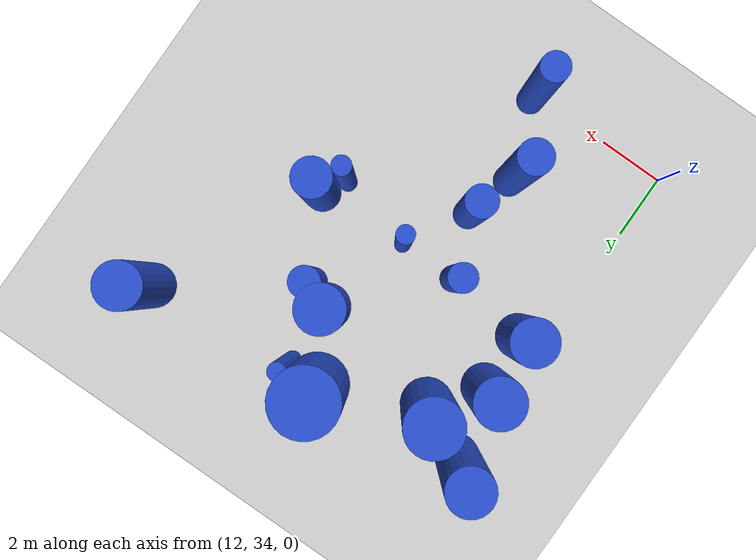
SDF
<sdf version="1.6">
 <world name="default">
  <model name="ground_plane">
   <static>1</static>
   <link name="link">
    <collision name="collision">
     <geometry><plane><normal>0 0 1</normal><size>100 100</size></plane></geometry>
     <surface><friction><ode><mu>100</mu><mu2>50</mu2></ode></friction></surface>
    </collision>
    <visual name="visual">
     <cast_shadows>0</cast_shadows>
     <geometry><plane><normal>0 0 1</normal><size>100 100</size></plane></geometry>
     <material>
      <script><uri>file://media/materials/scripts/gazebo.material</uri><name>Gazebo/Grey</name></script>
     </material>
    </visual>
   </link>
  </model>
  <model name="13">
   <static>0</static>
   <link name="link">
    <inertial>
     <mass>2</mass>
     <inertia><ixx>1.38583</ixx><ixy>0</ixy><ixz>0</ixz><iyy>1.38583</iyy><iyz>0</iyz><izz>0.558637</izz></inertia>
    </inertial>
    <collision name="collision">
     <geometry><cylinder><length>2.57664</length><radius>0.74742</radius></cylinder></geometry>
     <surface><contact><collide_without_contact>1</collide_without_contact></contact></surface>
    </collision>
    <visual name="visual">
     <geometry><cylinder><length>2.57664</length><radius>0.74742</radius></cylinder></geometry>
     <material>
      <script><uri>file://media/materials/scripts/gazebo.material</uri><name>Gazebo/Blue</name></script>
     </material>
    </visual>
    <gravity>0</gravity>
   </link>
   <pose>18.0491 42.9507 1.28832 0 -0 0</pose>
  </model>
  <model name="27">
   <static>0</static>
   <link name="link">
    <inertial>
     <mass>2</mass>
     <inertia><ixx>2.58788</ixx><ixy>0</ixy><ixz>0</ixz><iyy>2.58788</iyy><iyz>0</iyz><izz>0.212332</izz></inertia>
    </inertial>
    <collision name="collision">
     <geometry><cylinder><length>3.85879</length><radius>0.460795</radius></cylinder></geometry>
     <surface><contact><collide_without_contact>1</collide_without_contact></contact></surface>
    </collision>
    <visual name="visual">
     <geometry><cylinder><length>3.85879</length><radius>0.460795</radius></cylinder></geometry>
     <material>
      <script><uri>file://media/materials/scripts/gazebo.material</uri><name>Gazebo/Blue</name></script>
     </material>
    </visual>
    <gravity>0</gravity>
   </link>
   <pose>16.1431 38.1561 1.92939 0 -0 0</pose>
  </model>
  <model name="53">
   <static>0</static>
   <link name="link">
    <inertial>
     <mass>2</mass>
     <inertia><ixx>2.60897</ixx><ixy>0</ixy><ixz>0</ixz><iyy>2.60897</iyy><iyz>0</iyz><izz>0.17796</izz></inertia>
    </inertial>
    <collision name="collision">
     <geometry><cylinder><length>3.88844</length><radius>0.421853</radius></cylinder></geometry>
     <surface><contact><collide_without_contact>1</collide_without_contact></contact></surface>
    </collision>
    <visual name="visual">
     <geometry><cylinder><length>3.88844</length><radius>0.421853</radius></cylinder></geometry>
     <material>
      <script><uri>file://media/materials/scripts/gazebo.material</uri><name>Gazebo/Blue</name></script>
     </material>
    </visual>
    <gravity>0</gravity>
   </link>
   <pose>16.5759 34.2285 1.94422 0 -0 0</pose>
  </model>
  <model name="57">
   <static>0</static>
   <link name="link">
    <inertial>
     <mass>2</mass>
     <inertia><ixx>2.18418</ixx><ixy>0</ixy><ixz>0</ixz><iyy>2.18418</iyy><iyz>0</iyz><izz>0.482198</izz></inertia>
    </inertial>
    <collision name="collision">
     <geometry><cylinder><length>3.41445</length><radius>0.694405</radius></cylinder></geometry>
     <surface><contact><collide_without_contact>1</collide_without_contact></contact></surface>
    </collision>
    <visual name="visual">
     <geometry><cylinder><length>3.41445</length><radius>0.694405</radius></cylinder></geometry>
     <material>
      <script><uri>file://media/materials/scripts/gazebo.material</uri><name>Gazebo/Blue</name></script>
     </material>
    </visual>
    <gravity>0</gravity>
   </link>
   <pose>22.7422 45.4386 1.70723 0 -0 0</pose>
  </model>
  <model name="59">
   <static>0</static>
   <link name="link">
    <inertial>
     <mass>2</mass>
     <inertia><ixx>1.77923</ixx><ixy>0</ixy><ixz>0</ixz><iyy>1.77923</iyy><iyz>0</iyz><izz>0.488407</izz></inertia>
    </inertial>
    <collision name="collision">
     <geometry><cylinder><length>3.03483</length><radius>0.698861</radius></cylinder></geometry>
     <surface><contact><collide_without_contact>1</collide_without_contact></contact></surface>
    </collision>
    <visual name="visual">
     <geometry><cylinder><length>3.03483</length><radius>0.698861</radius></cylinder></geometry>
     <material>
      <script><uri>file://media/materials/scripts/gazebo.material</uri><name>Gazebo/Blue</name></script>
     </material>
    </visual>
    <gravity>0</gravity>
   </link>
   <pose>12.759 40.3292 1.51741 0 -0 0</pose>
  </model>
  <model name="70">
   <static>0</static>
   <link name="link">
    <inertial>
     <mass>2</mass>
     <inertia>
      <ixx>4.12077</ixx>
      <ixy>0</ixy>
      <ixz>0</ixz>
      <iyy>4.12077</iyy>
      <iyz>0</iyz>
      <izz>0.0638492</izz>
     </inertia>
    </inertial>
    <collision name="collision">
     <geometry><cylinder><length>4.95309</length><radius>0.252684</radius></cylinder></geometry>
     <surface><contact><collide_without_contact>1</collide_without_contact></contact></surface>
    </collision>
    <visual name="visual">
     <geometry><cylinder><length>4.95309</length><radius>0.252684</radius></cylinder></geometry>
     <material>
      <script><uri>file://media/materials/scripts/gazebo.material</uri><name>Gazebo/Blue</name></script>
     </material>
    </visual>
    <gravity>0</gravity>
   </link>
   <pose>17.248 40.06 2.47654 0 -0 0</pose>
  </model>
  <model name="90">
   <static>0</static>
   <link name="link">
    <inertial>
     <mass>2</mass>
     <inertia><ixx>2.41035</ixx><ixy>0</ixy><ixz>0</ixz><iyy>2.41035</iyy><iyz>0</iyz><izz>0.324501</izz></inertia>
    </inertial>
    <collision name="collision">
     <geometry><cylinder><length>3.67268</length><radius>0.56965</radius></cylinder></geometry>
     <surface><contact><collide_without_contact>1</collide_without_contact></contact></surface>
    </collision>
    <visual name="visual">
     <geometry><cylinder><length>3.67268</length><radius>0.56965</radius></cylinder></geometry>
     <material>
      <script><uri>file://media/materials/scripts/gazebo.material</uri><name>Gazebo/Blue</name></script>
     </material>
    </visual>
    <gravity>0</gravity>
   </link>
   <pose>20.1419 40.1772 1.83634 0 -0 0</pose>
  </model>
  <model name="105">
   <static>0</static>
   <link name="link">
    <inertial>
     <mass>2</mass>
     <inertia><ixx>2.06606</ixx><ixy>0</ixy><ixz>0</ixz><iyy>2.06606</iyy><iyz>0</iyz><izz>0.17566</izz></inertia>
    </inertial>
    <collision name="collision">
     <geometry><cylinder><length>3.4452</length><radius>0.419118</radius></cylinder></geometry>
     <surface><contact><collide_without_contact>1</collide_without_contact></contact></surface>
    </collision>
    <visual name="visual">
     <geometry><cylinder><length>3.4452</length><radius>0.419118</radius></cylinder></geometry>
     <material>
      <script><uri>file://media/materials/scripts/gazebo.material</uri><name>Gazebo/Blue</name></script>
     </material>
    </visual>
    <gravity>0</gravity>
   </link>
   <pose>15.3781 40.0314 1.7226 0 -0 0</pose>
  </model>
  <model name="130">
   <static>0</static>
   <link name="link">
    <inertial>
     <mass>2</mass>
     <inertia><ixx>3.12542</ixx><ixy>0</ixy><ixz>0</ixz><iyy>3.12542</iyy><iyz>0</iyz><izz>0.992962</izz></inertia>
    </inertial>
    <collision name="collision">
     <geometry><cylinder><length>3.9716</length><radius>0.996475</radius></cylinder></geometry>
     <surface><contact><collide_without_contact>1</collide_without_contact></contact></surface>
    </collision>
    <visual name="visual">
     <geometry><cylinder><length>3.9716</length><radius>0.996475</radius></cylinder></geometry>
     <material>
      <script><uri>file://media/materials/scripts/gazebo.material</uri><name>Gazebo/Blue</name></script>
     </material>
    </visual>
    <gravity>0</gravity>
   </link>
   <pose>16.9289 45.0492 1.9858 0 -0 0</pose>
  </model>
  <model name="138">
   <static>0</static>
   <link name="link">
    <inertial>
     <mass>2</mass>
     <inertia>
      <ixx>2.11905</ixx>
      <ixy>0</ixy>
      <ixz>0</ixz>
      <iyy>2.11905</iyy>
      <iyz>0</iyz>
      <izz>0.0820105</izz>
     </inertia>
    </inertial>
    <collision name="collision">
     <geometry><cylinder><length>3.53105</length><radius>0.286375</radius></cylinder></geometry>
     <surface><contact><collide_without_contact>1</collide_without_contact></contact></surface>
    </collision>
    <visual name="visual">
     <geometry><cylinder><length>3.53105</length><radius>0.286375</radius></cylinder></geometry>
     <material>
      <script><uri>file://media/materials/scripts/gazebo.material</uri><name>Gazebo/Blue</name></script>
     </material>
    </visual>
    <gravity>0</gravity>
   </link>
   <pose>19.6943 39.4602 1.76552 0 -0 0</pose>
  </model>
  <model name="149">
   <static>0</static>
   <link name="link">
    <inertial>
     <mass>2</mass>
     <inertia><ixx>3.48042</ixx><ixy>0</ixy><ixz>0</ixz><iyy>3.48042</iyy><iyz>0</iyz><izz>0.680354</izz></inertia>
    </inertial>
    <collision name="collision">
     <geometry><cylinder><length>4.34067</length><radius>0.824836</radius></cylinder></geometry>
     <surface><contact><collide_without_contact>1</collide_without_contact></contact></surface>
    </collision>
    <visual name="visual">
     <geometry><cylinder><length>4.34067</length><radius>0.824836</radius></cylinder></geometry>
     <material>
      <script><uri>file://media/materials/scripts/gazebo.material</uri><name>Gazebo/Blue</name></script>
     </material>
    </visual>
    <gravity>0</gravity>
   </link>
   <pose>13.8489 43.6199 2.17034 0 -0 0</pose>
  </model>
  <model name="160">
   <static>0</static>
   <link name="link">
    <inertial>
     <mass>2</mass>
     <inertia><ixx>1.12383</ixx><ixy>0</ixy><ixz>0</ixz><iyy>1.12383</iyy><iyz>0</iyz><izz>0.220587</izz></inertia>
    </inertial>
    <collision name="collision">
     <geometry><cylinder><length>2.46601</length><radius>0.469667</radius></cylinder></geometry>
     <surface><contact><collide_without_contact>1</collide_without_contact></contact></surface>
    </collision>
    <visual name="visual">
     <geometry><cylinder><length>2.46601</length><radius>0.469667</radius></cylinder></geometry>
     <material>
      <script><uri>file://media/materials/scripts/gazebo.material</uri><name>Gazebo/Blue</name></script>
     </material>
    </visual>
    <gravity>0</gravity>
   </link>
   <pose>18.8373 42.5814 1.233 0 -0 0</pose>
  </model>
  <model name="175">
   <static>0</static>
   <link name="link">
    <inertial>
     <mass>2</mass>
     <inertia><ixx>3.81884</ixx><ixy>0</ixy><ixz>0</ixz><iyy>3.81884</iyy><iyz>0</iyz><izz>0.234939</izz></inertia>
    </inertial>
    <collision name="collision">
     <geometry><cylinder><length>4.71256</length><radius>0.484705</radius></cylinder></geometry>
     <surface><contact><collide_without_contact>1</collide_without_contact></contact></surface>
    </collision>
    <visual name="visual">
     <geometry><cylinder><length>4.71256</length><radius>0.484705</radius></cylinder></geometry>
     <material>
      <script><uri>file://media/materials/scripts/gazebo.material</uri><name>Gazebo/Blue</name></script>
     </material>
    </visual>
    <gravity>0</gravity>
   </link>
   <pose>15.7049 36.614 2.35628 0 -0 0</pose>
  </model>
  <model name="183">
   <static>0</static>
   <link name="link">
    <inertial>
     <mass>2</mass>
     <inertia>
      <ixx>2.21192</ixx>
      <ixy>0</ixy>
      <ixz>0</ixz>
      <iyy>2.21192</iyy>
      <iyz>0</iyz>
      <izz>0.0688999</izz>
     </inertia>
    </inertial>
    <collision name="collision">
     <geometry><cylinder><length>3.61453</length><radius>0.262488</radius></cylinder></geometry>
     <surface><contact><collide_without_contact>1</collide_without_contact></contact></surface>
    </collision>
    <visual name="visual">
     <geometry><cylinder><length>3.61453</length><radius>0.262488</radius></cylinder></geometry>
     <material>
      <script><uri>file://media/materials/scripts/gazebo.material</uri><name>Gazebo/Blue</name></script>
     </material>
    </visual>
    <gravity>0</gravity>
   </link>
   <pose>17.9871 44.8498 1.80726 0 -0 0</pose>
  </model>
  <model name="217">
   <static>0</static>
   <link name="link">
    <inertial>
     <mass>2</mass>
     <inertia><ixx>3.55952</ixx><ixy>0</ixy><ixz>0</ixz><iyy>3.55952</iyy><iyz>0</iyz><izz>0.466842</izz></inertia>
    </inertial>
    <collision name="collision">
     <geometry><cylinder><length>4.46728</length><radius>0.683259</radius></cylinder></geometry>
     <surface><contact><collide_without_contact>1</collide_without_contact></contact></surface>
    </collision>
    <visual name="visual">
     <geometry><cylinder><length>4.46728</length><radius>0.683259</radius></cylinder></geometry>
     <material>
      <script><uri>file://media/materials/scripts/gazebo.material</uri><name>Gazebo/Blue</name></script>
     </material>
    </visual>
    <gravity>0</gravity>
   </link>
   <pose>12.1994 44.3913 2.23364 0 -0 0</pose>
  </model>
  <model name="229">
   <static>0</static>
   <link name="link">
    <inertial>
     <mass>2</mass>
     <inertia><ixx>2.52971</ixx><ixy>0</ixy><ixz>0</ixz><iyy>2.52971</iyy><iyz>0</iyz><izz>0.537861</izz></inertia>
    </inertial>
    <collision name="collision">
     <geometry><cylinder><length>3.68302</length><radius>0.73339</radius></cylinder></geometry>
     <surface><contact><collide_without_contact>1</collide_without_contact></contact></surface>
    </collision>
    <visual name="visual">
     <geometry><cylinder><length>3.68302</length><radius>0.73339</radius></cylinder></geometry>
     <material>
      <script><uri>file://media/materials/scripts/gazebo.material</uri><name>Gazebo/Blue</name></script>
     </material>
    </visual>
    <gravity>0</gravity>
   </link>
   <pose>12.711 42.177 1.84151 0 -0 0</pose>
  </model>
 </world>
</sdf>
